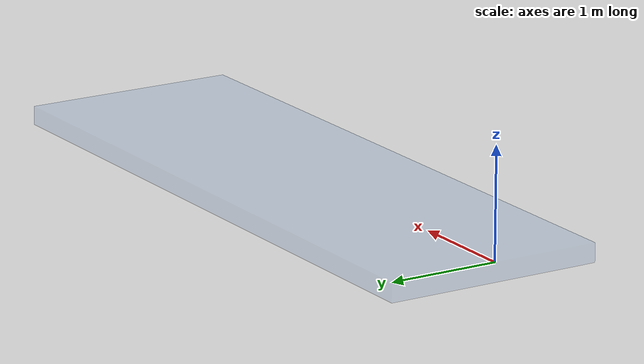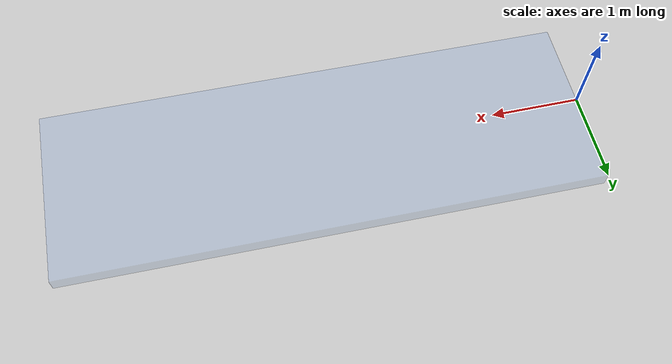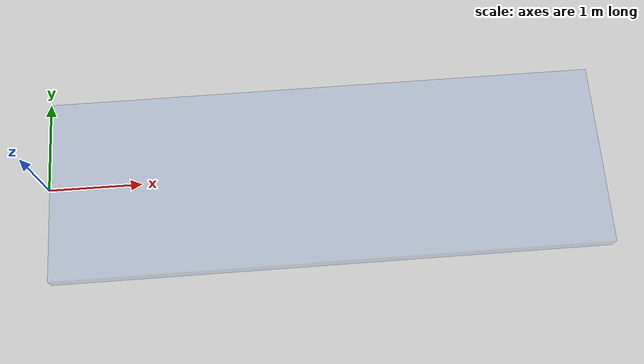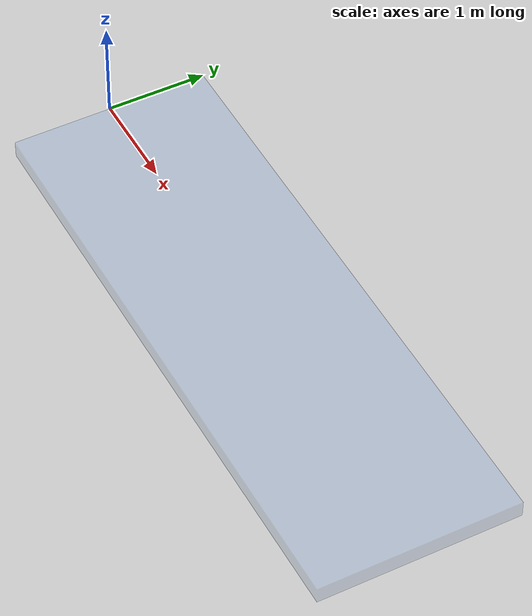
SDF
<?xml version="1.0" ?>
<sdf version="1.6">
  <world name="world">
    <model name="arena_water">
      <pose>0 0 0 0 0 0</pose>
      <link name="water">
        <pose>0 0 0 0 0 0</pose>
        <visual name="water_visual">
          <pose>3.0 0.0 -0.08666666666666667 0 0 0</pose>
          <geometry>
            <box>
              <size>6 2 0.17333333333333334</size>
            </box>
          </geometry>
          <material>
            <ambient>0.25 0.45 0.75 0.2000</ambient>
            <diffuse>0.30 0.50 0.80 0.2000</diffuse>
            <specular>0.60 0.60 0.65 0.2000</specular>
            <emissive>0.05 0.08 0.15 0.2000</emissive>
          </material>
        </visual>
      </link>
    </model>
  </world>
</sdf>
